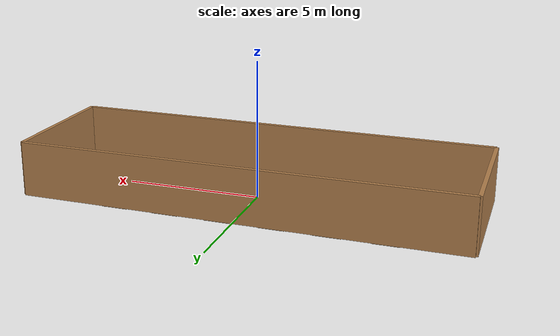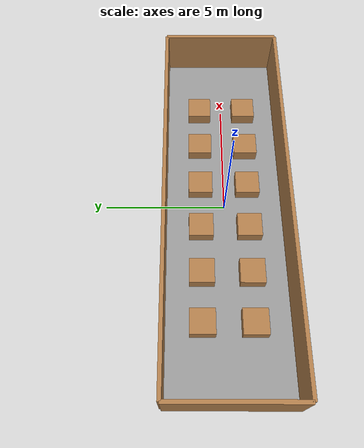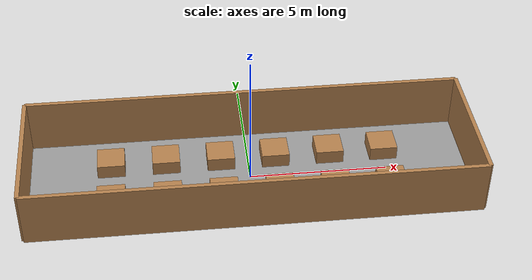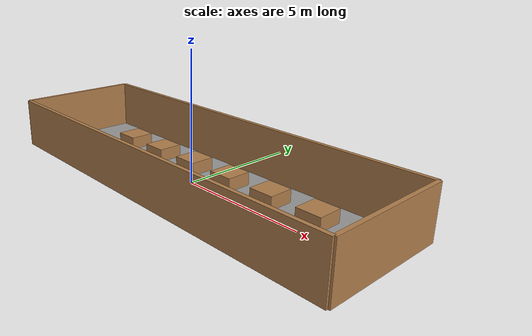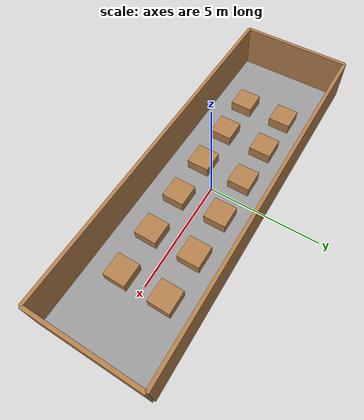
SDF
<?xml version='1.0'?>
<sdf version='1.6'>
  <world name='default'>

    <!-- Camera Pose -->
    <gui fullscreen='0'>
      <camera name='user_camera'>
        <pose>-15 0 15 0 0.785398 -0</pose>
      </camera>
    </gui>

    <!-- physics -->
    <physics type='ode'>
      <max_step_size>0.001</max_step_size>
      <real_time_update_rate>1000</real_time_update_rate>
    </physics>

    <!-- sun -->
    <include>
      <uri>model://sun</uri>
    </include>

    <!-- simple_room -->
    <include>
      <name>simple_room__narrow_corridors</name>
      <uri>model://simple_room</uri>
      <pose>0 0 0 0 0 0</pose>
    </include>

    <!-- box 1-1 -->
    <include>
      <name>box_1-1</name>
      <uri>model://box</uri>
      <pose>-5 1 0 0 -0 0</pose>
    </include>

    <!-- box 1-2 -->
    <include>
      <name>box_1-2</name>
      <uri>model://box</uri>
      <pose>-5 -1 0 0 -0 0</pose>
    </include>

    <!-- box 2-1 -->
    <include>
      <name>box_2-1</name>
      <uri>model://box</uri>
      <pose>-3 1 0 0 -0 0</pose>
    </include>

    <!-- box 2-2 -->
    <include>
      <name>box_2-2</name>
      <uri>model://box</uri>
      <pose>-3 -1 0 0 -0 0</pose>
    </include>

    <!-- box 3-1 -->
    <include>
      <name>box_3-1</name>
      <uri>model://box</uri>
      <pose>-1 1 0 0 -0 0</pose>
    </include>

    <!-- box 3-2 -->
    <include>
      <name>box_3-2</name>
      <uri>model://box</uri>
      <pose>-1 -1 0 0 -0 0</pose>
    </include>

    <!-- box 4-1 -->
    <include>
      <name>box_4-1</name>
      <uri>model://box</uri>
      <pose>1 1 0 0 -0 0</pose>
    </include>

    <!-- box 4-2 -->
    <include>
      <name>box_4-2</name>
      <uri>model://box</uri>
      <pose>1 -1 0 0 -0 0</pose>
    </include>

    <!-- box 5-1 -->
    <include>
      <name>box_5-1</name>
      <uri>model://box</uri>
      <pose>3 1 0 0 -0 0</pose>
    </include>

    <!-- box 5-2 -->
    <include>
      <name>box_5-2</name>
      <uri>model://box</uri>
      <pose>3 -1 0 0 -0 0</pose>
    </include>

    <!-- box 6-1 -->
    <include>
      <name>box_6-1</name>
      <uri>model://box</uri>
      <pose>5 1 0 0 -0 0</pose>
    </include>

    <!-- box 6-2 -->
    <include>
      <name>box_6-2</name>
      <uri>model://box</uri>
      <pose>5 -1 0 0 -0 0</pose>
    </include>

    <!-- locals -->
    <plugin name="locals" filename="lib_locals_publisher.so">
      <local name="start">-6.75 0 0 0 0 1</local>
      <local name="goal">6.75 0 0 0 0 1</local>
    </plugin>

    <plugin name="path" filename="lib_regions.so">
      <region name="start">
        <layer>1</layer>
        <color>Green</color>
        <area>-6.75 0 1.5 4</area>
      </region>
      <region name="goal">
        <layer>2</layer>
        <color>Blue</color>
        <area>6.75 0 1.5 4</area>
      </region>
    </plugin>

  </world>
</sdf>

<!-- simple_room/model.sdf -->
<sdf version='1.6'>

  <model name='simple_room'>
    <pose>0 0 0 0 -0 0</pose>

    <link name="ground_plane">
      <collision name="ground_plane_collision">
        <geometry>
          <plane>
            <normal>0 0 1</normal>
            <size>16 5</size>
          </plane>
        </geometry>
        <surface>
          <contact>
             <collide_bitmask>0xffff</collide_bitmask>
          </contact>
          <friction>
            <ode>
              <mu>100</mu>
              <mu2>50</mu2>
            </ode>
          </friction>
        </surface>
      </collision>
      <visual name="ground_plane_visual">
        <cast_shadows>false</cast_shadows>
        <geometry>
          <plane>
            <normal>0 0 1</normal>
            <size>16 5</size>
          </plane>
        </geometry>
        <material>
          <script>
            <uri>file://media/materials/scripts/gazebo.material</uri>
            <name>Gazebo/GreyTransparent</name>
          </script>
        </material>
      </visual>
    </link>

    <link name='Wall_0'>
      <pose>0 -2.5 1 0 -0 0</pose>
      <collision name='Wall_0_Collision'>
        <geometry>
          <box>
            <size>16 0.15 2.0</size>
          </box>
        </geometry>
        <max_contacts>10</max_contacts>
        <surface>
          <contact>
            <ode/>
          </contact>
          <bounce/>
          <friction>
            <torsional>
              <ode/>
            </torsional>
            <ode/>
          </friction>
        </surface>
      </collision>
      <visual name='Wall_0_Visual'>
        <geometry>
          <box>
            <size>16 0.15 2.0</size>
          </box>
        </geometry>
        <material>
          <script>
            <uri>file://media/materials/scripts/gazebo.material</uri>
            <name>Gazebo/Wood</name>
          </script>
          <ambient>1 1 1 1</ambient>
        </material>
        <meta>
          <layer>0</layer>
        </meta>
      </visual>
      <self_collide>0</self_collide>
      <enable_wind>0</enable_wind>
      <kinematic>0</kinematic>
    </link>

    <link name='Wall_1'>
      <pose>8 -0 1 0 -0 1.5708</pose>
      <collision name='Wall_1_Collision'>
        <geometry>
          <box>
            <size>5 0.15 2.0</size>
          </box>
        </geometry>
        <max_contacts>10</max_contacts>
        <surface>
          <contact>
            <ode/>
          </contact>
          <bounce/>
          <friction>
            <torsional>
              <ode/>
            </torsional>
            <ode/>
          </friction>
        </surface>
      </collision>
      <visual name='Wall_1_Visual'>
        <geometry>
          <box>
            <size>5 0.15 2.0</size>
          </box>
        </geometry>
        <material>
          <script>
            <uri>file://media/materials/scripts/gazebo.material</uri>
            <name>Gazebo/Wood</name>
          </script>
          <ambient>1 1 1 1</ambient>
        </material>
        <meta>
          <layer>0</layer>
        </meta>
      </visual>
      <self_collide>0</self_collide>
      <enable_wind>0</enable_wind>
      <kinematic>0</kinematic>
    </link>

    <link name='Wall_2'>
      <pose>0 2.5 1 0 0 3.14159</pose>
      <collision name='Wall_2_Collision'>
        <geometry>
          <box>
            <size>16 0.15 2.0</size>
          </box>
        </geometry>
        <max_contacts>10</max_contacts>
        <surface>
          <contact>
            <ode/>
          </contact>
          <bounce/>
          <friction>
            <torsional>
              <ode/>
            </torsional>
            <ode/>
          </friction>
        </surface>
      </collision>
      <visual name='Wall_2_Visual'>
        <geometry>
          <box>
            <size>16 0.15 2.0</size>
          </box>
        </geometry>
        <material>
          <script>
            <uri>file://media/materials/scripts/gazebo.material</uri>
            <name>Gazebo/Wood</name>
          </script>
          <ambient>1 1 1 1</ambient>
        </material>
        <meta>
          <layer>0</layer>
        </meta>
      </visual>
      <self_collide>0</self_collide>
      <enable_wind>0</enable_wind>
      <kinematic>0</kinematic>
    </link>

    <link name='Wall_3'>
      <pose>-8 0 1 0 -0 -1.5708</pose>
      <collision name='Wall_3_Collision'>
        <geometry>
          <box>
            <size>5 0.15 2.0</size>
          </box>
        </geometry>
        <max_contacts>10</max_contacts>
        <surface>
          <contact>
            <ode/>
          </contact>
          <bounce/>
          <friction>
            <torsional>
              <ode/>
            </torsional>
            <ode/>
          </friction>
        </surface>
      </collision>
      <visual name='Wall_3_Visual'>
        <geometry>
          <box>
            <size>5 0.15 2.0</size>
          </box>
        </geometry>
        <material>
          <script>
            <uri>file://media/materials/scripts/gazebo.material</uri>
            <name>Gazebo/Wood</name>
          </script>
          <ambient>1 1 1 1</ambient>
        </material>
        <meta>
          <layer>0</layer>
        </meta>
      </visual>
      <self_collide>0</self_collide>
      <enable_wind>0</enable_wind>
      <kinematic>0</kinematic>
    </link>
    <static>1</static>
  </model>
</sdf>

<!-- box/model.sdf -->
<sdf version='1.6'>

  <model name='box'>
    <pose>0 0 0 0 0 0</pose>
    <link name='link'>
      <inertial>
        <mass>1</mass>
        <inertia>
          <ixx>0.166667</ixx>
          <ixy>0</ixy>
          <ixz>0</ixz>
          <iyy>0.166667</iyy>
          <iyz>0</iyz>
          <izz>0.166667</izz>
        </inertia>
      </inertial>
      <collision name='collision'>
        <geometry>
          <box>
            <size>1 1 1</size>
          </box>
        </geometry>
        <max_contacts>10</max_contacts>
        <surface>
          <contact>
            <ode/>
          </contact>
          <bounce/>
          <friction>
            <torsional>
              <ode/>
            </torsional>
            <ode/>
          </friction>
        </surface>
      </collision>
      <visual name='visual'>
        <geometry>
          <box>
            <size>1 1 1</size>
          </box>
        </geometry>
        <material>
          <script>
            <uri>file://media/materials/scripts/gazebo.material</uri>
            <name>Gazebo/Wood</name>
          </script>
        </material>
      </visual>
      <self_collide>0</self_collide>
      <enable_wind>0</enable_wind>
      <kinematic>0</kinematic>
    </link>
  </model>

</sdf>
